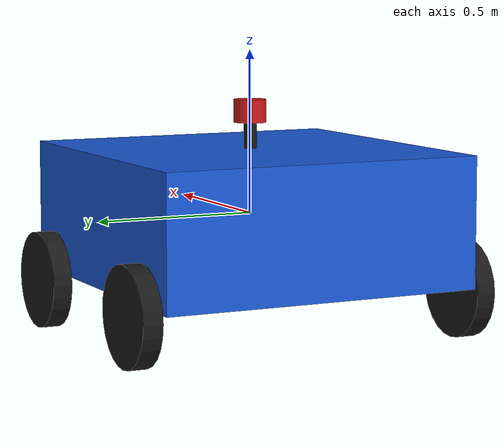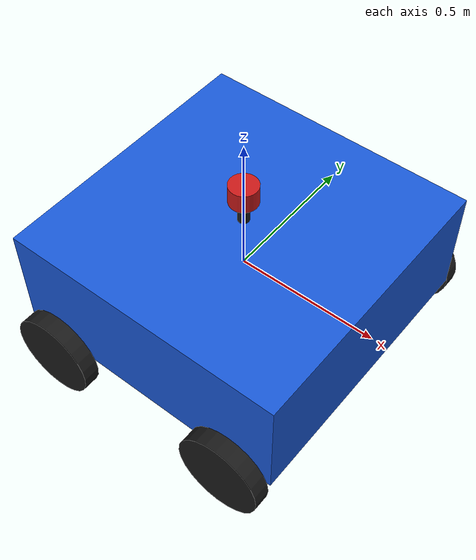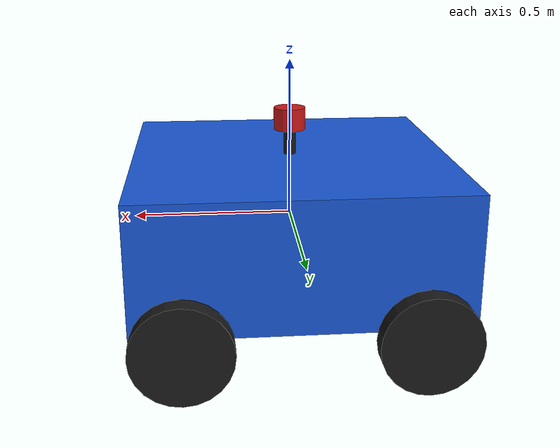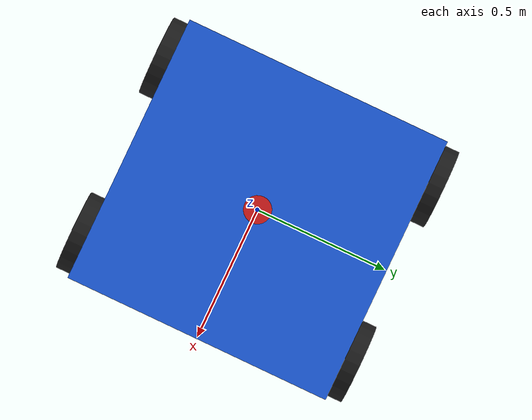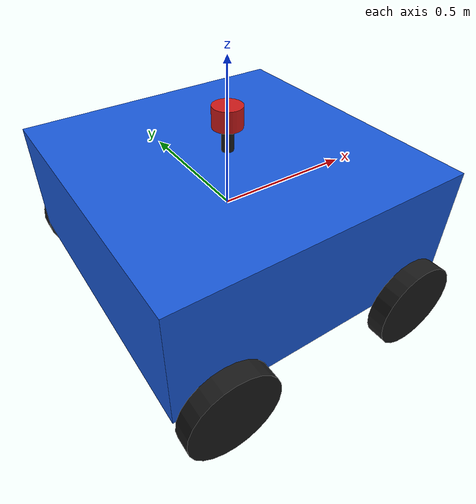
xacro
<?xml version="1.0"?>
<robot name="diffbot" xmlns:xacro="http://www.ros.org/wiki/xacro">

  <!-- ============ dimensions ============ -->
  <xacro:property name="body_length" value="1.0"/>
  <xacro:property name="body_width"  value="1.0"/>
  <xacro:property name="body_height" value="0.40"/>
  <xacro:property name="body_mass"   value="40.0"/>

  <xacro:property name="wheel_radius" value="0.15"/>
  <xacro:property name="wheel_width"  value="0.06"/>
  <xacro:property name="wheel_mass"   value="2.0"/>
  <xacro:property name="wheel_x_off"  value="0.35"/>
  <xacro:property name="wheel_y_off"  value="0.54"/>
  <xacro:property name="ground_clearance" value="0.02"/>

  <xacro:property name="lidar_radius" value="0.05"/>
  <xacro:property name="lidar_height" value="0.07"/>
  <xacro:property name="lidar_stand_height" value="0.08"/>
  <xacro:property name="lidar_mass" value="0.2"/>

  <!-- z of base_link center above ground when spawned -->
  <xacro:property name="base_z" value="${wheel_radius + ground_clearance + body_height/2}"/>
  <!-- wheel center height relative to base_link -->
  <xacro:property name="wheel_z_rel" value="${wheel_radius - base_z}"/>

  <material name="body_grey">
    <color rgba="0.1 0.35 0.85 1.0"/>
  </material>
  <material name="wheel_black">
    <color rgba="0.1 0.1 0.1 1.0"/>
  </material>
  <material name="lidar_red">
    <color rgba="0.8 0.1 0.1 1.0"/>
  </material>

  <!-- ============ base ============ -->
  <link name="base_link">
    <visual>
      <geometry>
        <box size="${body_length} ${body_width} ${body_height}"/>
      </geometry>
      <material name="body_grey"/>
    </visual>
    <collision>
      <geometry>
        <box size="${body_length} ${body_width} ${body_height}"/>
      </geometry>
    </collision>
    <inertial>
      <mass value="${body_mass}"/>
      <inertia
        ixx="${body_mass/12.0*(body_width*body_width+body_height*body_height)}" ixy="0.0" ixz="0.0"
        iyy="${body_mass/12.0*(body_length*body_length+body_height*body_height)}" iyz="0.0"
        izz="${body_mass/12.0*(body_length*body_length+body_width*body_width)}"/>
    </inertial>
  </link>

  <!-- ============ wheel macro ============ -->
  <xacro:macro name="wheel" params="name x_off y_off">
    <link name="${name}_wheel_link">
      <visual>
        <origin xyz="0 0 0" rpy="1.5708 0 0"/>
        <geometry>
          <cylinder radius="${wheel_radius}" length="${wheel_width}"/>
        </geometry>
        <material name="wheel_black"/>
      </visual>
      <collision>
        <origin xyz="0 0 0" rpy="1.5708 0 0"/>
        <geometry>
          <cylinder radius="${wheel_radius}" length="${wheel_width}"/>
        </geometry>
      </collision>
      <inertial>
        <mass value="${wheel_mass}"/>
        <inertia
          ixx="${wheel_mass/12.0*(3*wheel_radius*wheel_radius+wheel_width*wheel_width)}" ixy="0.0" ixz="0.0"
          iyy="${wheel_mass/2.0*wheel_radius*wheel_radius}" iyz="0.0"
          izz="${wheel_mass/12.0*(3*wheel_radius*wheel_radius+wheel_width*wheel_width)}"/>
      </inertial>
    </link>

    <joint name="${name}_wheel_joint" type="continuous">
      <parent link="base_link"/>
      <child link="${name}_wheel_link"/>
      <origin xyz="${x_off} ${y_off} ${wheel_z_rel}" rpy="0 0 0"/>
      <axis xyz="0 1 0"/>
      <dynamics damping="0.1" friction="0.05"/>
    </joint>

    <gazebo reference="${name}_wheel_link">
      <material>Gazebo/Black</material>
      <mu1>1.2</mu1>
      <mu2>1.2</mu2>
    </gazebo>
  </xacro:macro>

  <xacro:wheel name="front_left"  x_off="${wheel_x_off}"  y_off="${wheel_y_off}"/>
  <xacro:wheel name="rear_left"   x_off="${-wheel_x_off}" y_off="${wheel_y_off}"/>
  <xacro:wheel name="front_right" x_off="${wheel_x_off}"  y_off="${-wheel_y_off}"/>
  <xacro:wheel name="rear_right"  x_off="${-wheel_x_off}" y_off="${-wheel_y_off}"/>

  <!-- ============ 2D LiDAR on top ============ -->
  <link name="lidar_stand_link">
    <visual>
      <geometry>
        <cylinder radius="0.02" length="${lidar_stand_height}"/>
      </geometry>
      <material name="wheel_black"/>
    </visual>
    <collision>
      <geometry>
        <cylinder radius="0.02" length="${lidar_stand_height}"/>
      </geometry>
    </collision>
    <inertial>
      <mass value="0.05"/>
      <inertia ixx="0.0001" ixy="0.0" ixz="0.0" iyy="0.0001" iyz="0.0" izz="0.0001"/>
    </inertial>
  </link>

  <joint name="lidar_stand_joint" type="fixed">
    <parent link="base_link"/>
    <child link="lidar_stand_link"/>
    <origin xyz="0 0 ${body_height/2 + lidar_stand_height/2}" rpy="0 0 0"/>
  </joint>

  <link name="lidar_link">
    <visual>
      <geometry>
        <cylinder radius="${lidar_radius}" length="${lidar_height}"/>
      </geometry>
      <material name="lidar_red"/>
    </visual>
    <collision>
      <geometry>
        <cylinder radius="${lidar_radius}" length="${lidar_height}"/>
      </geometry>
    </collision>
    <inertial>
      <mass value="${lidar_mass}"/>
      <inertia
        ixx="${lidar_mass/12.0*(3*lidar_radius*lidar_radius+lidar_height*lidar_height)}" ixy="0.0" ixz="0.0"
        iyy="${lidar_mass/12.0*(3*lidar_radius*lidar_radius+lidar_height*lidar_height)}" iyz="0.0"
        izz="${lidar_mass/2.0*lidar_radius*lidar_radius}"/>
    </inertial>
  </link>

  <joint name="lidar_joint" type="fixed">
    <parent link="lidar_stand_link"/>
    <child link="lidar_link"/>
    <origin xyz="0 0 ${lidar_stand_height/2 + lidar_height/2}" rpy="0 0 0"/>
  </joint>

  <gazebo reference="lidar_link">
    <material>Gazebo/Red</material>
    <sensor name="lidar_2d" type="ray">
      <pose>0 0 0 0 0 0</pose>
      <visualize>true</visualize>
      <always_on>true</always_on>
      <update_rate>10</update_rate>
      <ray>
        <scan>
          <horizontal>
            <samples>684</samples>
            <resolution>1</resolution>
            <min_angle>-3.14159265</min_angle>
            <max_angle>3.13240665</max_angle>
          </horizontal>
        </scan>
        <range>
          <min>0.15</min>
          <max>12.0</max>
          <resolution>0.01</resolution>
        </range>
        <noise>
          <type>gaussian</type>
          <mean>0.0</mean>
          <stddev>0.01</stddev>
        </noise>
      </ray>
      <plugin name="lidar_plugin" filename="libgazebo_ros_ray_sensor.so">
        <ros>
          <namespace>/</namespace>
          <remapping>~/out:=scan</remapping>
        </ros>
        <output_type>sensor_msgs/LaserScan</output_type>
        <frame_name>lidar_link</frame_name>
      </plugin>
    </sensor>
  </gazebo>

  <!-- ============ 4-wheel differential drive plugin ============ -->
  <gazebo>
    <plugin name="diff_drive" filename="libgazebo_ros_diff_drive.so">
      <ros>
        <namespace>/</namespace>
      </ros>
      <update_rate>50</update_rate>

      <num_wheel_pairs>2</num_wheel_pairs>

      <left_joint>front_left_wheel_joint</left_joint>
      <left_joint>rear_left_wheel_joint</left_joint>
      <right_joint>front_right_wheel_joint</right_joint>
      <right_joint>rear_right_wheel_joint</right_joint>

      <wheel_separation>${2*wheel_y_off}</wheel_separation>
      <wheel_separation>${2*wheel_y_off}</wheel_separation>
      <wheel_diameter>${2*wheel_radius}</wheel_diameter>
      <wheel_diameter>${2*wheel_radius}</wheel_diameter>

      <max_wheel_torque>100</max_wheel_torque>
      <max_wheel_acceleration>3.0</max_wheel_acceleration>

      <command_topic>cmd_vel</command_topic>
      <odometry_source>1</odometry_source>
      <publish_odom>true</publish_odom>
      <publish_odom_tf>true</publish_odom_tf>
      <publish_wheel_tf>false</publish_wheel_tf>

      <odometry_topic>odom</odometry_topic>
      <odometry_frame>odom</odometry_frame>
      <robot_base_frame>base_link</robot_base_frame>
    </plugin>

    <plugin name="joint_state_publisher" filename="libgazebo_ros_joint_state_publisher.so">
      <ros>
        <namespace>/</namespace>
      </ros>
      <update_rate>30</update_rate>
      <joint_name>front_left_wheel_joint</joint_name>
      <joint_name>rear_left_wheel_joint</joint_name>
      <joint_name>front_right_wheel_joint</joint_name>
      <joint_name>rear_right_wheel_joint</joint_name>
    </plugin>
  </gazebo>

</robot>
